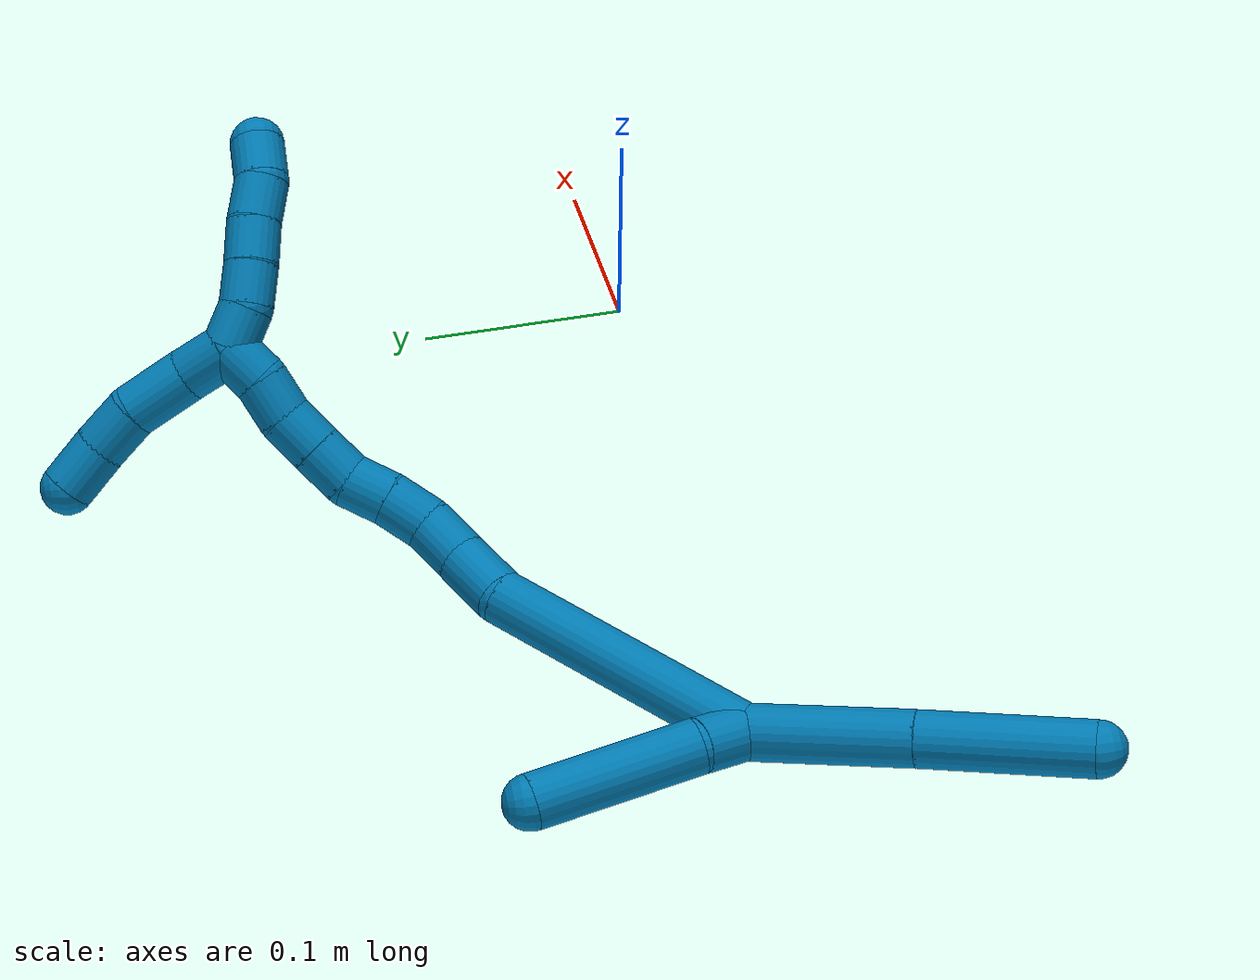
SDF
<sdf version="1.7">
 <world name="default">
  <model name="9">
   <static>0</static>
   <link name="9">
    <collision name="collision-cylinder-e_1_2_8">
     <pose>-0.009101 -0.012638 -0.033672 2.78253 -0.247833 -1.20296</pose>
     <geometry><cylinder><radius>0.0125</radius><length>0.074199</length></cylinder></geometry>
     <surface>
      <friction><ode><mu>1.16</mu><mu2>1.16</mu2><slip1>0</slip1><slip2>0</slip2></ode></friction>
      <contact><ode><kp>1e+06</kp><kd>1</kd><max_vel>0</max_vel><min_depth>0.001</min_depth></ode></contact>
     </surface>
    </collision>
    <visual name="visual-cylinder-e_1_2_8">
     <pose>-0.009101 -0.012638 -0.033672 2.78253 -0.247833 -1.20296</pose>
     <geometry><cylinder><radius>0.0125</radius><length>0.074199</length></cylinder></geometry>
     <material><ambient>0 0.490196 0.709804 1</ambient></material>
    </visual>
    <collision name="collision-cylinder-e_2_8_6">
     <pose>-0.028054 -0.037326 -0.101901 2.80608 -0.26298 -1.32604</pose>
     <geometry><cylinder><radius>0.0125</radius><length>0.075801</length></cylinder></geometry>
     <surface>
      <friction><ode><mu>1.16</mu><mu2>1.16</mu2><slip1>0</slip1><slip2>0</slip2></ode></friction>
      <contact><ode><kp>1e+06</kp><kd>1</kd><max_vel>0</max_vel><min_depth>0.001</min_depth></ode></contact>
     </surface>
    </collision>
    <visual name="visual-cylinder-e_2_8_6">
     <pose>-0.028054 -0.037326 -0.101901 2.80608 -0.26298 -1.32604</pose>
     <geometry><cylinder><radius>0.0125</radius><length>0.075801</length></cylinder></geometry>
     <material><ambient>0 0.490196 0.709804 1</ambient></material>
    </visual>
    <collision name="collision-cylinder-e_1_2_9">
     <pose>-0.00212 -0.003848 0.011113 0.333366 -0.178306 -0.030076</pose>
     <geometry><cylinder><radius>0.0125</radius><length>0.0239</length></cylinder></geometry>
     <surface>
      <friction><ode><mu>1.16</mu><mu2>1.16</mu2><slip1>0</slip1><slip2>0</slip2></ode></friction>
      <contact><ode><kp>1e+06</kp><kd>1</kd><max_vel>0</max_vel><min_depth>0.001</min_depth></ode></contact>
     </surface>
    </collision>
    <visual name="visual-cylinder-e_1_2_9">
     <pose>-0.00212 -0.003848 0.011113 0.333366 -0.178306 -0.030076</pose>
     <geometry><cylinder><radius>0.0125</radius><length>0.0239</length></cylinder></geometry>
     <material><ambient>0 0.490196 0.709804 1</ambient></material>
    </visual>
    <collision name="collision-cylinder-e_2_9_5">
     <pose>-0.011011 -0.010284 0.059579 0.069152 -0.178923 -0.006205</pose>
     <geometry><cylinder><radius>0.0125</radius><length>0.0761</length></cylinder></geometry>
     <surface>
      <friction><ode><mu>1.16</mu><mu2>1.16</mu2><slip1>0</slip1><slip2>0</slip2></ode></friction>
      <contact><ode><kp>1e+06</kp><kd>1</kd><max_vel>0</max_vel><min_depth>0.001</min_depth></ode></contact>
     </surface>
    </collision>
    <visual name="visual-cylinder-e_2_9_5">
     <pose>-0.011011 -0.010284 0.059579 0.069152 -0.178923 -0.006205</pose>
     <geometry><cylinder><radius>0.0125</radius><length>0.0761</length></cylinder></geometry>
     <material><ambient>0 0.490196 0.709804 1</ambient></material>
    </visual>
    <collision name="collision-cylinder-e_1_2_10">
     <pose>0.041034 0.0177 0.04512 -0.373836 0.702534 -0.138395</pose>
     <geometry><cylinder><radius>0.0125</radius><length>0.127009</length></cylinder></geometry>
     <surface>
      <friction><ode><mu>1.16</mu><mu2>1.16</mu2><slip1>0</slip1><slip2>0</slip2></ode></friction>
      <contact><ode><kp>1e+06</kp><kd>1</kd><max_vel>0</max_vel><min_depth>0.001</min_depth></ode></contact>
     </surface>
    </collision>
    <visual name="visual-cylinder-e_1_2_10">
     <pose>0.041034 0.0177 0.04512 -0.373836 0.702534 -0.138395</pose>
     <geometry><cylinder><radius>0.0125</radius><length>0.127009</length></cylinder></geometry>
     <material><ambient>0 0.490196 0.709804 1</ambient></material>
    </visual>
    <collision name="collision-cylinder-e_2_10_11">
     <pose>0.093346 0.041662 0.096714 -0.768741 0.896879 -0.38442</pose>
     <geometry><cylinder><radius>0.0125</radius><length>0.028869</length></cylinder></geometry>
     <surface>
      <friction><ode><mu>1.16</mu><mu2>1.16</mu2><slip1>0</slip1><slip2>0</slip2></ode></friction>
      <contact><ode><kp>1e+06</kp><kd>1</kd><max_vel>0</max_vel><min_depth>0.001</min_depth></ode></contact>
     </surface>
    </collision>
    <visual name="visual-cylinder-e_2_10_11">
     <pose>0.093346 0.041662 0.096714 -0.768741 0.896879 -0.38442</pose>
     <geometry><cylinder><radius>0.0125</radius><length>0.028869</length></cylinder></geometry>
     <material><ambient>0 0.490196 0.709804 1</ambient></material>
    </visual>
    <collision name="collision-cylinder-e_3_11_12">
     <pose>0.114013 0.049732 0.109334 -0.286113 0.972015 -0.151892</pose>
     <geometry><cylinder><radius>0.0125</radius><length>0.022731</length></cylinder></geometry>
     <surface>
      <friction><ode><mu>1.16</mu><mu2>1.16</mu2><slip1>0</slip1><slip2>0</slip2></ode></friction>
      <contact><ode><kp>1e+06</kp><kd>1</kd><max_vel>0</max_vel><min_depth>0.001</min_depth></ode></contact>
     </surface>
    </collision>
    <visual name="visual-cylinder-e_3_11_12">
     <pose>0.114013 0.049732 0.109334 -0.286113 0.972015 -0.151892</pose>
     <geometry><cylinder><radius>0.0125</radius><length>0.022731</length></cylinder></geometry>
     <material><ambient>0 0.490196 0.709804 1</ambient></material>
    </visual>
    <collision name="collision-cylinder-e_4_12_13">
     <pose>0.130534 0.051704 0.123245 -0.021087 0.742911 -0.008214</pose>
     <geometry><cylinder><radius>0.0125</radius><length>0.02109</length></cylinder></geometry>
     <surface>
      <friction><ode><mu>1.16</mu><mu2>1.16</mu2><slip1>0</slip1><slip2>0</slip2></ode></friction>
      <contact><ode><kp>1e+06</kp><kd>1</kd><max_vel>0</max_vel><min_depth>0.001</min_depth></ode></contact>
     </surface>
    </collision>
    <visual name="visual-cylinder-e_4_12_13">
     <pose>0.130534 0.051704 0.123245 -0.021087 0.742911 -0.008214</pose>
     <geometry><cylinder><radius>0.0125</radius><length>0.02109</length></cylinder></geometry>
     <material><ambient>0 0.490196 0.709804 1</ambient></material>
    </visual>
    <collision name="collision-cylinder-e_5_13_14">
     <pose>0.143445 0.052005 0.139313 -0.016567 0.607872 -0.005196</pose>
     <geometry><cylinder><radius>0.0125</radius><length>0.020233</length></cylinder></geometry>
     <surface>
      <friction><ode><mu>1.16</mu><mu2>1.16</mu2><slip1>0</slip1><slip2>0</slip2></ode></friction>
      <contact><ode><kp>1e+06</kp><kd>1</kd><max_vel>0</max_vel><min_depth>0.001</min_depth></ode></contact>
     </surface>
    </collision>
    <visual name="visual-cylinder-e_5_13_14">
     <pose>0.143445 0.052005 0.139313 -0.016567 0.607872 -0.005196</pose>
     <geometry><cylinder><radius>0.0125</radius><length>0.020233</length></cylinder></geometry>
     <material><ambient>0 0.490196 0.709804 1</ambient></material>
    </visual>
    <collision name="collision-cylinder-e_6_14_15">
     <pose>0.157021 0.050583 0.153731 0.24982 0.890389 0.119681</pose>
     <geometry><cylinder><radius>0.0125</radius><length>0.020062</length></cylinder></geometry>
     <surface>
      <friction><ode><mu>1.16</mu><mu2>1.16</mu2><slip1>0</slip1><slip2>0</slip2></ode></friction>
      <contact><ode><kp>1e+06</kp><kd>1</kd><max_vel>0</max_vel><min_depth>0.001</min_depth></ode></contact>
     </surface>
    </collision>
    <visual name="visual-cylinder-e_6_14_15">
     <pose>0.157021 0.050583 0.153731 0.24982 0.890389 0.119681</pose>
     <geometry><cylinder><radius>0.0125</radius><length>0.020062</length></cylinder></geometry>
     <material><ambient>0 0.490196 0.709804 1</ambient></material>
    </visual>
    <collision name="collision-cylinder-e_7_15_16">
     <pose>0.172722 0.047624 0.165811 0.230241 0.911342 0.113214</pose>
     <geometry><cylinder><radius>0.0125</radius><length>0.020001</length></cylinder></geometry>
     <surface>
      <friction><ode><mu>1.16</mu><mu2>1.16</mu2><slip1>0</slip1><slip2>0</slip2></ode></friction>
      <contact><ode><kp>1e+06</kp><kd>1</kd><max_vel>0</max_vel><min_depth>0.001</min_depth></ode></contact>
     </surface>
    </collision>
    <visual name="visual-cylinder-e_7_15_16">
     <pose>0.172722 0.047624 0.165811 0.230241 0.911342 0.113214</pose>
     <geometry><cylinder><radius>0.0125</radius><length>0.020001</length></cylinder></geometry>
     <material><ambient>0 0.490196 0.709804 1</ambient></material>
    </visual>
    <collision name="collision-cylinder-e_8_16_17">
     <pose>0.189308 0.043557 0.175961 0.567788 1.05145 0.33539</pose>
     <geometry><cylinder><radius>0.0125</radius><length>0.020002</length></cylinder></geometry>
     <surface>
      <friction><ode><mu>1.16</mu><mu2>1.16</mu2><slip1>0</slip1><slip2>0</slip2></ode></friction>
      <contact><ode><kp>1e+06</kp><kd>1</kd><max_vel>0</max_vel><min_depth>0.001</min_depth></ode></contact>
     </surface>
    </collision>
    <visual name="visual-cylinder-e_8_16_17">
     <pose>0.189308 0.043557 0.175961 0.567788 1.05145 0.33539</pose>
     <geometry><cylinder><radius>0.0125</radius><length>0.020002</length></cylinder></geometry>
     <material><ambient>0 0.490196 0.709804 1</ambient></material>
    </visual>
    <collision name="collision-cylinder-e_9_17_1">
     <pose>0.205813 0.039652 0.186254 0.199558 0.898174 0.096419</pose>
     <geometry><cylinder><radius>0.0125</radius><length>0.020002</length></cylinder></geometry>
     <surface>
      <friction><ode><mu>1.16</mu><mu2>1.16</mu2><slip1>0</slip1><slip2>0</slip2></ode></friction>
      <contact><ode><kp>1e+06</kp><kd>1</kd><max_vel>0</max_vel><min_depth>0.001</min_depth></ode></contact>
     </surface>
    </collision>
    <visual name="visual-cylinder-e_9_17_1">
     <pose>0.205813 0.039652 0.186254 0.199558 0.898174 0.096419</pose>
     <geometry><cylinder><radius>0.0125</radius><length>0.020002</length></cylinder></geometry>
     <material><ambient>0 0.490196 0.709804 1</ambient></material>
    </visual>
    <collision name="collision-cylinder-e_1_1_18">
     <pose>0.210769 0.044143 0.202176 -0.52812 -0.247057 0.067114</pose>
     <geometry><cylinder><radius>0.0125</radius><length>0.023438</length></cylinder></geometry>
     <surface>
      <friction><ode><mu>1.16</mu><mu2>1.16</mu2><slip1>0</slip1><slip2>0</slip2></ode></friction>
      <contact><ode><kp>1e+06</kp><kd>1</kd><max_vel>0</max_vel><min_depth>0.001</min_depth></ode></contact>
     </surface>
    </collision>
    <visual name="visual-cylinder-e_1_1_18">
     <pose>0.210769 0.044143 0.202176 -0.52812 -0.247057 0.067114</pose>
     <geometry><cylinder><radius>0.0125</radius><length>0.023438</length></cylinder></geometry>
     <material><ambient>0 0.490196 0.709804 1</ambient></material>
    </visual>
    <collision name="collision-cylinder-e_2_18_19">
     <pose>0.202431 0.05435 0.225378 -0.322971 -0.369844 0.060927</pose>
     <geometry><cylinder><radius>0.0125</radius><length>0.03028</length></cylinder></geometry>
     <surface>
      <friction><ode><mu>1.16</mu><mu2>1.16</mu2><slip1>0</slip1><slip2>0</slip2></ode></friction>
      <contact><ode><kp>1e+06</kp><kd>1</kd><max_vel>0</max_vel><min_depth>0.001</min_depth></ode></contact>
     </surface>
    </collision>
    <visual name="visual-cylinder-e_2_18_19">
     <pose>0.202431 0.05435 0.225378 -0.322971 -0.369844 0.060927</pose>
     <geometry><cylinder><radius>0.0125</radius><length>0.03028</length></cylinder></geometry>
     <material><ambient>0 0.490196 0.709804 1</ambient></material>
    </visual>
    <collision name="collision-cylinder-e_3_19_20">
     <pose>0.190916 0.063462 0.247145 -0.504883 -0.562902 0.148881</pose>
     <geometry><cylinder><radius>0.0125</radius><length>0.022645</length></cylinder></geometry>
     <surface>
      <friction><ode><mu>1.16</mu><mu2>1.16</mu2><slip1>0</slip1><slip2>0</slip2></ode></friction>
      <contact><ode><kp>1e+06</kp><kd>1</kd><max_vel>0</max_vel><min_depth>0.001</min_depth></ode></contact>
     </surface>
    </collision>
    <visual name="visual-cylinder-e_3_19_20">
     <pose>0.190916 0.063462 0.247145 -0.504883 -0.562902 0.148881</pose>
     <geometry><cylinder><radius>0.0125</radius><length>0.022645</length></cylinder></geometry>
     <material><ambient>0 0.490196 0.709804 1</ambient></material>
    </visual>
    <collision name="collision-cylinder-e_4_20_4">
     <pose>0.177668 0.071975 0.26405 -0.42733 -0.655747 0.147343</pose>
     <geometry><cylinder><radius>0.0125</radius><length>0.023637</length></cylinder></geometry>
     <surface>
      <friction><ode><mu>1.16</mu><mu2>1.16</mu2><slip1>0</slip1><slip2>0</slip2></ode></friction>
      <contact><ode><kp>1e+06</kp><kd>1</kd><max_vel>0</max_vel><min_depth>0.001</min_depth></ode></contact>
     </surface>
    </collision>
    <visual name="visual-cylinder-e_4_20_4">
     <pose>0.177668 0.071975 0.26405 -0.42733 -0.655747 0.147343</pose>
     <geometry><cylinder><radius>0.0125</radius><length>0.023637</length></cylinder></geometry>
     <material><ambient>0 0.490196 0.709804 1</ambient></material>
    </visual>
    <collision name="collision-cylinder-e_1_1_21">
     <pose>0.221855 0.035892 0.187256 2.68223 0.964918 2.30185</pose>
     <geometry><cylinder><radius>0.0125</radius><length>0.02</length></cylinder></geometry>
     <surface>
      <friction><ode><mu>1.16</mu><mu2>1.16</mu2><slip1>0</slip1><slip2>0</slip2></ode></friction>
      <contact><ode><kp>1e+06</kp><kd>1</kd><max_vel>0</max_vel><min_depth>0.001</min_depth></ode></contact>
     </surface>
    </collision>
    <visual name="visual-cylinder-e_1_1_21">
     <pose>0.221855 0.035892 0.187256 2.68223 0.964918 2.30185</pose>
     <geometry><cylinder><radius>0.0125</radius><length>0.02</length></cylinder></geometry>
     <material><ambient>0 0.490196 0.709804 1</ambient></material>
    </visual>
    <collision name="collision-cylinder-e_2_21_22">
     <pose>0.239702 0.032408 0.179622 2.77938 1.29678 2.66733</pose>
     <geometry><cylinder><radius>0.0125</radius><length>0.02</length></cylinder></geometry>
     <surface>
      <friction><ode><mu>1.16</mu><mu2>1.16</mu2><slip1>0</slip1><slip2>0</slip2></ode></friction>
      <contact><ode><kp>1e+06</kp><kd>1</kd><max_vel>0</max_vel><min_depth>0.001</min_depth></ode></contact>
     </surface>
    </collision>
    <visual name="visual-cylinder-e_2_21_22">
     <pose>0.239702 0.032408 0.179622 2.77938 1.29678 2.66733</pose>
     <geometry><cylinder><radius>0.0125</radius><length>0.02</length></cylinder></geometry>
     <material><ambient>0 0.490196 0.709804 1</ambient></material>
    </visual>
    <collision name="collision-cylinder-e_3_22_23">
     <pose>0.259117 0.031108 0.175071 2.97428 1.36447 2.93587</pose>
     <geometry><cylinder><radius>0.0125</radius><length>0.02</length></cylinder></geometry>
     <surface>
      <friction><ode><mu>1.16</mu><mu2>1.16</mu2><slip1>0</slip1><slip2>0</slip2></ode></friction>
      <contact><ode><kp>1e+06</kp><kd>1</kd><max_vel>0</max_vel><min_depth>0.001</min_depth></ode></contact>
     </surface>
    </collision>
    <visual name="visual-cylinder-e_3_22_23">
     <pose>0.259117 0.031108 0.175071 2.97428 1.36447 2.93587</pose>
     <geometry><cylinder><radius>0.0125</radius><length>0.02</length></cylinder></geometry>
     <material><ambient>0 0.490196 0.709804 1</ambient></material>
    </visual>
    <collision name="collision-cylinder-e_4_23_24">
     <pose>0.27841 0.030727 0.169944 3.12859 1.25485 3.12366</pose>
     <geometry><cylinder><radius>0.0125</radius><length>0.02</length></cylinder></geometry>
     <surface>
      <friction><ode><mu>1.16</mu><mu2>1.16</mu2><slip1>0</slip1><slip2>0</slip2></ode></friction>
      <contact><ode><kp>1e+06</kp><kd>1</kd><max_vel>0</max_vel><min_depth>0.001</min_depth></ode></contact>
     </surface>
    </collision>
    <visual name="visual-cylinder-e_4_23_24">
     <pose>0.27841 0.030727 0.169944 3.12859 1.25485 3.12366</pose>
     <geometry><cylinder><radius>0.0125</radius><length>0.02</length></cylinder></geometry>
     <material><ambient>0 0.490196 0.709804 1</ambient></material>
    </visual>
    <collision name="collision-cylinder-e_5_24_3">
     <pose>0.297724 0.032598 0.166469 -1.76119 1.37483 -1.56511</pose>
     <geometry><cylinder><radius>0.0125</radius><length>0.02</length></cylinder></geometry>
     <surface>
      <friction><ode><mu>1.16</mu><mu2>1.16</mu2><slip1>0</slip1><slip2>0</slip2></ode></friction>
      <contact><ode><kp>1e+06</kp><kd>1</kd><max_vel>0</max_vel><min_depth>0.001</min_depth></ode></contact>
     </surface>
    </collision>
    <visual name="visual-cylinder-e_5_24_3">
     <pose>0.297724 0.032598 0.166469 -1.76119 1.37483 -1.56511</pose>
     <geometry><cylinder><radius>0.0125</radius><length>0.02</length></cylinder></geometry>
     <material><ambient>0 0.490196 0.709804 1</ambient></material>
    </visual>
    <collision name="collision-sphere-3">
     <pose>0.307532 0.03451 0.1661 0 -0 0</pose>
     <geometry><sphere><radius>0.0125</radius></sphere></geometry>
     <surface>
      <friction><ode><mu>1.16</mu><mu2>1.16</mu2><slip1>0</slip1><slip2>0</slip2></ode></friction>
      <contact><ode><kp>1e+06</kp><kd>1</kd><max_vel>0</max_vel><min_depth>0.001</min_depth></ode></contact>
     </surface>
    </collision>
    <visual name="visual-sphere-3">
     <pose>0.307532 0.03451 0.1661 0 -0 0</pose>
     <geometry><sphere><radius>0.0125</radius></sphere></geometry>
     <material><ambient>0 0.490196 0.709804 1</ambient></material>
    </visual>
    <collision name="collision-sphere-24">
     <pose>0.287915 0.030686 0.166837 0 -0 0</pose>
     <geometry><sphere><radius>0.0125</radius></sphere></geometry>
     <surface>
      <friction><ode><mu>1.16</mu><mu2>1.16</mu2><slip1>0</slip1><slip2>0</slip2></ode></friction>
      <contact><ode><kp>1e+06</kp><kd>1</kd><max_vel>0</max_vel><min_depth>0.001</min_depth></ode></contact>
     </surface>
    </collision>
    <visual name="visual-sphere-24">
     <pose>0.287915 0.030686 0.166837 0 -0 0</pose>
     <geometry><sphere><radius>0.0125</radius></sphere></geometry>
     <material><ambient>0 0.490196 0.709804 1</ambient></material>
    </visual>
    <collision name="collision-sphere-23">
     <pose>0.268905 0.030767 0.173051 0 -0 0</pose>
     <geometry><sphere><radius>0.0125</radius></sphere></geometry>
     <surface>
      <friction><ode><mu>1.16</mu><mu2>1.16</mu2><slip1>0</slip1><slip2>0</slip2></ode></friction>
      <contact><ode><kp>1e+06</kp><kd>1</kd><max_vel>0</max_vel><min_depth>0.001</min_depth></ode></contact>
     </surface>
    </collision>
    <visual name="visual-sphere-23">
     <pose>0.268905 0.030767 0.173051 0 -0 0</pose>
     <geometry><sphere><radius>0.0125</radius></sphere></geometry>
     <material><ambient>0 0.490196 0.709804 1</ambient></material>
    </visual>
    <collision name="collision-sphere-22">
     <pose>0.249329 0.031449 0.177091 0 -0 0</pose>
     <geometry><sphere><radius>0.0125</radius></sphere></geometry>
     <surface>
      <friction><ode><mu>1.16</mu><mu2>1.16</mu2><slip1>0</slip1><slip2>0</slip2></ode></friction>
      <contact><ode><kp>1e+06</kp><kd>1</kd><max_vel>0</max_vel><min_depth>0.001</min_depth></ode></contact>
     </surface>
    </collision>
    <visual name="visual-sphere-22">
     <pose>0.249329 0.031449 0.177091 0 -0 0</pose>
     <geometry><sphere><radius>0.0125</radius></sphere></geometry>
     <material><ambient>0 0.490196 0.709804 1</ambient></material>
    </visual>
    <collision name="collision-sphere-21">
     <pose>0.230075 0.033367 0.182152 0 -0 0</pose>
     <geometry><sphere><radius>0.0125</radius></sphere></geometry>
     <surface>
      <friction><ode><mu>1.16</mu><mu2>1.16</mu2><slip1>0</slip1><slip2>0</slip2></ode></friction>
      <contact><ode><kp>1e+06</kp><kd>1</kd><max_vel>0</max_vel><min_depth>0.001</min_depth></ode></contact>
     </surface>
    </collision>
    <visual name="visual-sphere-21">
     <pose>0.230075 0.033367 0.182152 0 -0 0</pose>
     <geometry><sphere><radius>0.0125</radius></sphere></geometry>
     <material><ambient>0 0.490196 0.709804 1</ambient></material>
    </visual>
    <collision name="collision-sphere-4">
     <pose>0.170461 0.075858 0.272575 0 -0 0</pose>
     <geometry><sphere><radius>0.0125</radius></sphere></geometry>
     <surface>
      <friction><ode><mu>1.16</mu><mu2>1.16</mu2><slip1>0</slip1><slip2>0</slip2></ode></friction>
      <contact><ode><kp>1e+06</kp><kd>1</kd><max_vel>0</max_vel><min_depth>0.001</min_depth></ode></contact>
     </surface>
    </collision>
    <visual name="visual-sphere-4">
     <pose>0.170461 0.075858 0.272575 0 -0 0</pose>
     <geometry><sphere><radius>0.0125</radius></sphere></geometry>
     <material><ambient>0 0.490196 0.709804 1</ambient></material>
    </visual>
    <collision name="collision-sphere-20">
     <pose>0.184874 0.068093 0.255526 0 -0 0</pose>
     <geometry><sphere><radius>0.0125</radius></sphere></geometry>
     <surface>
      <friction><ode><mu>1.16</mu><mu2>1.16</mu2><slip1>0</slip1><slip2>0</slip2></ode></friction>
      <contact><ode><kp>1e+06</kp><kd>1</kd><max_vel>0</max_vel><min_depth>0.001</min_depth></ode></contact>
     </surface>
    </collision>
    <visual name="visual-sphere-20">
     <pose>0.184874 0.068093 0.255526 0 -0 0</pose>
     <geometry><sphere><radius>0.0125</radius></sphere></geometry>
     <material><ambient>0 0.490196 0.709804 1</ambient></material>
    </visual>
    <collision name="collision-sphere-10">
     <pose>0.082067 0.035399 0.090239 0 -0 0</pose>
     <geometry><sphere><radius>0.0125</radius></sphere></geometry>
     <surface>
      <friction><ode><mu>1.16</mu><mu2>1.16</mu2><slip1>0</slip1><slip2>0</slip2></ode></friction>
      <contact><ode><kp>1e+06</kp><kd>1</kd><max_vel>0</max_vel><min_depth>0.001</min_depth></ode></contact>
     </surface>
    </collision>
    <visual name="visual-sphere-10">
     <pose>0.082067 0.035399 0.090239 0 -0 0</pose>
     <geometry><sphere><radius>0.0125</radius></sphere></geometry>
     <material><ambient>0 0.490196 0.709804 1</ambient></material>
    </visual>
    <collision name="collision-sphere-5">
     <pose>-0.017782 -0.012871 0.096932 0 -0 0</pose>
     <geometry><sphere><radius>0.0125</radius></sphere></geometry>
     <surface>
      <friction><ode><mu>1.16</mu><mu2>1.16</mu2><slip1>0</slip1><slip2>0</slip2></ode></friction>
      <contact><ode><kp>1e+06</kp><kd>1</kd><max_vel>0</max_vel><min_depth>0.001</min_depth></ode></contact>
     </surface>
    </collision>
    <visual name="visual-sphere-5">
     <pose>-0.017782 -0.012871 0.096932 0 -0 0</pose>
     <geometry><sphere><radius>0.0125</radius></sphere></geometry>
     <material><ambient>0 0.490196 0.709804 1</ambient></material>
    </visual>
    <collision name="collision-sphere-6">
     <pose>-0.037906 -0.049376 -0.136458 0 -0 0</pose>
     <geometry><sphere><radius>0.0125</radius></sphere></geometry>
     <surface>
      <friction><ode><mu>1.16</mu><mu2>1.16</mu2><slip1>0</slip1><slip2>0</slip2></ode></friction>
      <contact><ode><kp>1e+06</kp><kd>1</kd><max_vel>0</max_vel><min_depth>0.001</min_depth></ode></contact>
     </surface>
    </collision>
    <visual name="visual-sphere-6">
     <pose>-0.037906 -0.049376 -0.136458 0 -0 0</pose>
     <geometry><sphere><radius>0.0125</radius></sphere></geometry>
     <material><ambient>0 0.490196 0.709804 1</ambient></material>
    </visual>
    <collision name="collision-sphere-9">
     <pose>-0.004239 -0.007697 0.022226 0 -0 0</pose>
     <geometry><sphere><radius>0.0125</radius></sphere></geometry>
     <surface>
      <friction><ode><mu>1.16</mu><mu2>1.16</mu2><slip1>0</slip1><slip2>0</slip2></ode></friction>
      <contact><ode><kp>1e+06</kp><kd>1</kd><max_vel>0</max_vel><min_depth>0.001</min_depth></ode></contact>
     </surface>
    </collision>
    <visual name="visual-sphere-9">
     <pose>-0.004239 -0.007697 0.022226 0 -0 0</pose>
     <geometry><sphere><radius>0.0125</radius></sphere></geometry>
     <material><ambient>0 0.490196 0.709804 1</ambient></material>
    </visual>
    <collision name="collision-sphere-2">
     <geometry><sphere><radius>0.0125</radius></sphere></geometry>
     <surface>
      <friction><ode><mu>1.16</mu><mu2>1.16</mu2><slip1>0</slip1><slip2>0</slip2></ode></friction>
      <contact><ode><kp>1e+06</kp><kd>1</kd><max_vel>0</max_vel><min_depth>0.001</min_depth></ode></contact>
     </surface>
    </collision>
    <visual name="visual-sphere-2">
     <geometry><sphere><radius>0.0125</radius></sphere></geometry>
     <material><ambient>0 0.490196 0.709804 1</ambient></material>
    </visual>
    <collision name="collision-sphere-19">
     <pose>0.196958 0.05883 0.238764 0 -0 0</pose>
     <geometry><sphere><radius>0.0125</radius></sphere></geometry>
     <surface>
      <friction><ode><mu>1.16</mu><mu2>1.16</mu2><slip1>0</slip1><slip2>0</slip2></ode></friction>
      <contact><ode><kp>1e+06</kp><kd>1</kd><max_vel>0</max_vel><min_depth>0.001</min_depth></ode></contact>
     </surface>
    </collision>
    <visual name="visual-sphere-19">
     <pose>0.196958 0.05883 0.238764 0 -0 0</pose>
     <geometry><sphere><radius>0.0125</radius></sphere></geometry>
     <material><ambient>0 0.490196 0.709804 1</ambient></material>
    </visual>
    <collision name="collision-sphere-8">
     <pose>-0.018201 -0.025276 -0.067344 0 -0 0</pose>
     <geometry><sphere><radius>0.0125</radius></sphere></geometry>
     <surface>
      <friction><ode><mu>1.16</mu><mu2>1.16</mu2><slip1>0</slip1><slip2>0</slip2></ode></friction>
      <contact><ode><kp>1e+06</kp><kd>1</kd><max_vel>0</max_vel><min_depth>0.001</min_depth></ode></contact>
     </surface>
    </collision>
    <visual name="visual-sphere-8">
     <pose>-0.018201 -0.025276 -0.067344 0 -0 0</pose>
     <geometry><sphere><radius>0.0125</radius></sphere></geometry>
     <material><ambient>0 0.490196 0.709804 1</ambient></material>
    </visual>
    <collision name="collision-sphere-11">
     <pose>0.104625 0.047924 0.103189 0 -0 0</pose>
     <geometry><sphere><radius>0.0125</radius></sphere></geometry>
     <surface>
      <friction><ode><mu>1.16</mu><mu2>1.16</mu2><slip1>0</slip1><slip2>0</slip2></ode></friction>
      <contact><ode><kp>1e+06</kp><kd>1</kd><max_vel>0</max_vel><min_depth>0.001</min_depth></ode></contact>
     </surface>
    </collision>
    <visual name="visual-sphere-11">
     <pose>0.104625 0.047924 0.103189 0 -0 0</pose>
     <geometry><sphere><radius>0.0125</radius></sphere></geometry>
     <material><ambient>0 0.490196 0.709804 1</ambient></material>
    </visual>
    <collision name="collision-sphere-12">
     <pose>0.123401 0.05154 0.11548 0 -0 0</pose>
     <geometry><sphere><radius>0.0125</radius></sphere></geometry>
     <surface>
      <friction><ode><mu>1.16</mu><mu2>1.16</mu2><slip1>0</slip1><slip2>0</slip2></ode></friction>
      <contact><ode><kp>1e+06</kp><kd>1</kd><max_vel>0</max_vel><min_depth>0.001</min_depth></ode></contact>
     </surface>
    </collision>
    <visual name="visual-sphere-12">
     <pose>0.123401 0.05154 0.11548 0 -0 0</pose>
     <geometry><sphere><radius>0.0125</radius></sphere></geometry>
     <material><ambient>0 0.490196 0.709804 1</ambient></material>
    </visual>
    <collision name="collision-sphere-13">
     <pose>0.137667 0.051868 0.131009 0 -0 0</pose>
     <geometry><sphere><radius>0.0125</radius></sphere></geometry>
     <surface>
      <friction><ode><mu>1.16</mu><mu2>1.16</mu2><slip1>0</slip1><slip2>0</slip2></ode></friction>
      <contact><ode><kp>1e+06</kp><kd>1</kd><max_vel>0</max_vel><min_depth>0.001</min_depth></ode></contact>
     </surface>
    </collision>
    <visual name="visual-sphere-13">
     <pose>0.137667 0.051868 0.131009 0 -0 0</pose>
     <geometry><sphere><radius>0.0125</radius></sphere></geometry>
     <material><ambient>0 0.490196 0.709804 1</ambient></material>
    </visual>
    <collision name="collision-sphere-14">
     <pose>0.149223 0.052143 0.147616 0 -0 0</pose>
     <geometry><sphere><radius>0.0125</radius></sphere></geometry>
     <surface>
      <friction><ode><mu>1.16</mu><mu2>1.16</mu2><slip1>0</slip1><slip2>0</slip2></ode></friction>
      <contact><ode><kp>1e+06</kp><kd>1</kd><max_vel>0</max_vel><min_depth>0.001</min_depth></ode></contact>
     </surface>
    </collision>
    <visual name="visual-sphere-14">
     <pose>0.149223 0.052143 0.147616 0 -0 0</pose>
     <geometry><sphere><radius>0.0125</radius></sphere></geometry>
     <material><ambient>0 0.490196 0.709804 1</ambient></material>
    </visual>
    <collision name="collision-sphere-15">
     <pose>0.164818 0.049023 0.159845 0 -0 0</pose>
     <geometry><sphere><radius>0.0125</radius></sphere></geometry>
     <surface>
      <friction><ode><mu>1.16</mu><mu2>1.16</mu2><slip1>0</slip1><slip2>0</slip2></ode></friction>
      <contact><ode><kp>1e+06</kp><kd>1</kd><max_vel>0</max_vel><min_depth>0.001</min_depth></ode></contact>
     </surface>
    </collision>
    <visual name="visual-sphere-15">
     <pose>0.164818 0.049023 0.159845 0 -0 0</pose>
     <geometry><sphere><radius>0.0125</radius></sphere></geometry>
     <material><ambient>0 0.490196 0.709804 1</ambient></material>
    </visual>
    <collision name="collision-sphere-16">
     <pose>0.180626 0.046226 0.171777 0 -0 0</pose>
     <geometry><sphere><radius>0.0125</radius></sphere></geometry>
     <surface>
      <friction><ode><mu>1.16</mu><mu2>1.16</mu2><slip1>0</slip1><slip2>0</slip2></ode></friction>
      <contact><ode><kp>1e+06</kp><kd>1</kd><max_vel>0</max_vel><min_depth>0.001</min_depth></ode></contact>
     </surface>
    </collision>
    <visual name="visual-sphere-16">
     <pose>0.180626 0.046226 0.171777 0 -0 0</pose>
     <geometry><sphere><radius>0.0125</radius></sphere></geometry>
     <material><ambient>0 0.490196 0.709804 1</ambient></material>
    </visual>
    <collision name="collision-sphere-17">
     <pose>0.19799 0.040887 0.180146 0 -0 0</pose>
     <geometry><sphere><radius>0.0125</radius></sphere></geometry>
     <surface>
      <friction><ode><mu>1.16</mu><mu2>1.16</mu2><slip1>0</slip1><slip2>0</slip2></ode></friction>
      <contact><ode><kp>1e+06</kp><kd>1</kd><max_vel>0</max_vel><min_depth>0.001</min_depth></ode></contact>
     </surface>
    </collision>
    <visual name="visual-sphere-17">
     <pose>0.19799 0.040887 0.180146 0 -0 0</pose>
     <geometry><sphere><radius>0.0125</radius></sphere></geometry>
     <material><ambient>0 0.490196 0.709804 1</ambient></material>
    </visual>
    <collision name="collision-sphere-1">
     <pose>0.213635 0.038417 0.192361 0 -0 0</pose>
     <geometry><sphere><radius>0.0125</radius></sphere></geometry>
     <surface>
      <friction><ode><mu>1.16</mu><mu2>1.16</mu2><slip1>0</slip1><slip2>0</slip2></ode></friction>
      <contact><ode><kp>1e+06</kp><kd>1</kd><max_vel>0</max_vel><min_depth>0.001</min_depth></ode></contact>
     </surface>
    </collision>
    <visual name="visual-sphere-1">
     <pose>0.213635 0.038417 0.192361 0 -0 0</pose>
     <geometry><sphere><radius>0.0125</radius></sphere></geometry>
     <material><ambient>0 0.490196 0.709804 1</ambient></material>
    </visual>
    <collision name="collision-sphere-18">
     <pose>0.207904 0.049869 0.211991 0 -0 0</pose>
     <geometry><sphere><radius>0.0125</radius></sphere></geometry>
     <surface>
      <friction><ode><mu>1.16</mu><mu2>1.16</mu2><slip1>0</slip1><slip2>0</slip2></ode></friction>
      <contact><ode><kp>1e+06</kp><kd>1</kd><max_vel>0</max_vel><min_depth>0.001</min_depth></ode></contact>
     </surface>
    </collision>
    <visual name="visual-sphere-18">
     <pose>0.207904 0.049869 0.211991 0 -0 0</pose>
     <geometry><sphere><radius>0.0125</radius></sphere></geometry>
     <material><ambient>0 0.490196 0.709804 1</ambient></material>
    </visual>
    <inertial>
     <pose>0.096666 0.019716 0.087489 0 -0 0</pose>
     <mass>0.75</mass>
     <inertia>
      <ixx>0.00014</ixx>
      <ixy>0</ixy>
      <ixz>0</ixz>
      <iyy>0.000136</iyy>
      <iyz>0</iyz>
      <izz>-0.000108</izz>
     </inertia>
    </inertial>
   </link>
   <pose>-0.317942 0.023018 0.014993 -1.60519 -0.59894 -0.023305</pose>
  </model>
 </world>
</sdf>
